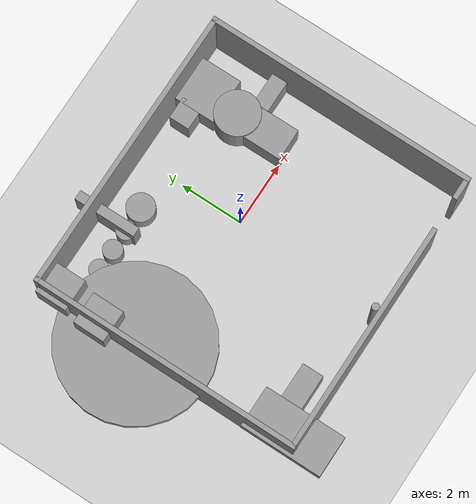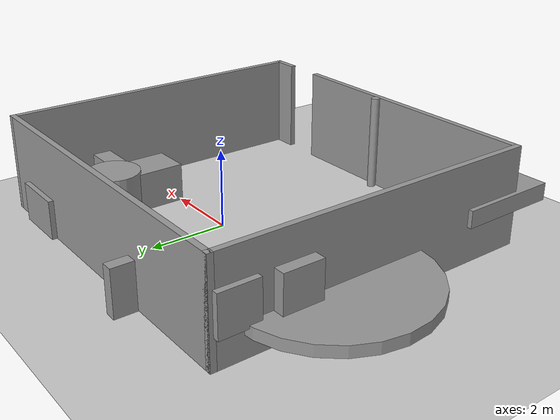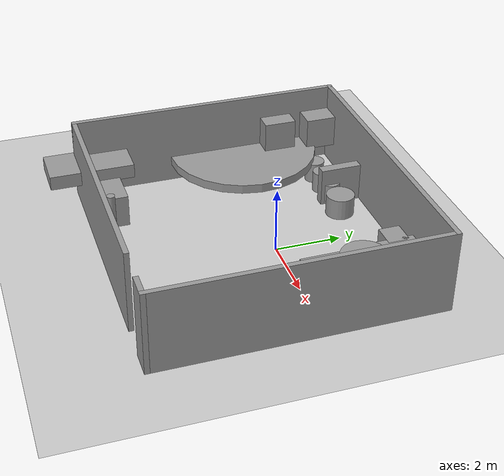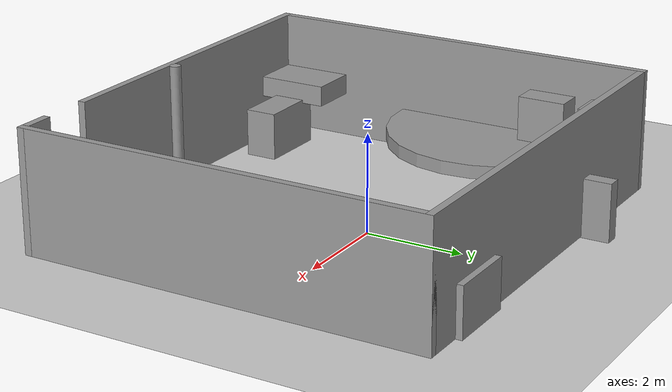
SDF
<sdf version="1.6">
 <world name="default">
  <light name="sun" type="directional">
   <pose>0 0 10 0 -0 0</pose>
   <diffuse>0.8 0.8 0.8 1</diffuse>
   <specular>0.2 0.2 0.2 1</specular>
   <attenuation>
    <range>1000</range>
    <constant>0.9</constant>
    <linear>0.01</linear>
    <quadratic>0.001</quadratic>
   </attenuation>
   <direction>-0.5 0.1 -0.9</direction>
  </light>
  <model name="ground_plane">
   <static>1</static>
   <link name="link">
    <collision name="collision">
     <geometry><plane><normal>0 0 1</normal><size>100 100</size></plane></geometry>
     <surface>
      <contact><collide_bitmask>65535</collide_bitmask></contact>
      <friction><ode><mu>100</mu><mu2>50</mu2></ode></friction>
     </surface>
    </collision>
    <visual name="visual">
     <cast_shadows>0</cast_shadows>
     <geometry><plane><normal>0 0 1</normal><size>100 100</size></plane></geometry>
     <material>
      <script><uri>file://media/materials/scripts/gazebo.material</uri><name>Gazebo/Grey</name></script>
     </material>
    </visual>
   </link>
  </model>
  <gravity>0 0 -9.8</gravity>
  <magnetic_field>6e-06 2.3e-05 -4.2e-05</magnetic_field>
  <atmosphere type="adiabatic"/>
  <physics name="default_physics" default="0" type="ode">
   <max_step_size>0.001</max_step_size>
   <real_time_factor>1</real_time_factor>
   <real_time_update_rate>1000</real_time_update_rate>
  </physics>
  <scene><ambient>0.4 0.4 0.4 1</ambient><background>0.7 0.7 0.7 1</background><shadows>1</shadows></scene>
  <audio><device>default</device></audio>
  <spherical_coordinates>
   <surface_model>EARTH_WGS84</surface_model>
   <latitude_deg>0</latitude_deg>
   <longitude_deg>0</longitude_deg>
   <elevation>0</elevation>
   <heading_deg>0</heading_deg>
  </spherical_coordinates>
  <model name="try2">
   <pose>-0.39709 -0.678514 0 0 -0 0</pose>
   <link name="Wall_13">
    <collision name="Wall_13_Collision">
     <geometry><box><size>8.5 0.15 2.5</size></box></geometry>
     <pose>0 0 1.25 0 -0 0</pose>
    </collision>
    <visual name="Wall_13_Visual">
     <pose>0 0 1.25 0 -0 0</pose>
     <geometry><box><size>8.5 0.15 2.5</size></box></geometry>
     <material>
      <script><uri>file://media/materials/scripts/gazebo.material</uri><name>Gazebo/Grey</name></script>
      <ambient>1 1 1 1</ambient>
     </material>
     <meta><layer>0</layer></meta>
    </visual>
    <pose>-4.425 -0 0 0 -0 -1.5708</pose>
   </link>
   <link name="Wall_14">
    <collision name="Wall_14_Collision">
     <geometry><box><size>7.25 0.15 2.5</size></box></geometry>
     <pose>0 0 1.25 0 -0 0</pose>
    </collision>
    <visual name="Wall_14_Visual">
     <pose>0 0 1.25 0 -0 0</pose>
     <geometry><box><size>7.25 0.15 2.5</size></box></geometry>
     <material>
      <script><uri>file://media/materials/scripts/gazebo.material</uri><name>Gazebo/Grey</name></script>
      <ambient>1 1 1 1</ambient>
     </material>
     <meta><layer>0</layer></meta>
    </visual>
    <pose>-0.875 -4.175 0 0 -0 0</pose>
   </link>
   <link name="Wall_7">
    <collision name="Wall_7_Collision">
     <geometry><box><size>9 0.15 2.5</size></box></geometry>
     <pose>0 0 1.25 0 -0 0</pose>
    </collision>
    <visual name="Wall_7_Visual">
     <pose>0 0 1.25 0 -0 0</pose>
     <geometry><box><size>9 0.15 2.5</size></box></geometry>
     <material>
      <script><uri>file://media/materials/scripts/gazebo.material</uri><name>Gazebo/Grey</name></script>
      <ambient>1 1 1 1</ambient>
     </material>
     <meta><layer>0</layer></meta>
    </visual>
    <pose>0 4.175 0 0 -0 0</pose>
   </link>
   <link name="Wall_8">
    <collision name="Wall_8_Collision">
     <geometry><box><size>8.5 0.15 2.5</size></box></geometry>
     <pose>0 0 1.25 0 -0 0</pose>
    </collision>
    <visual name="Wall_8_Visual">
     <pose>0 0 1.25 0 -0 0</pose>
     <geometry><box><size>8.5 0.15 2.5</size></box></geometry>
     <material>
      <script><uri>file://media/materials/scripts/gazebo.material</uri><name>Gazebo/Grey</name></script>
      <ambient>1 1 1 1</ambient>
     </material>
     <meta><layer>0</layer></meta>
    </visual>
    <pose>4.425 -0 0 0 -0 -1.5708</pose>
   </link>
   <link name="Wall_9">
    <collision name="Wall_9_Collision">
     <geometry><box><size>0.75 0.15 2.5</size></box></geometry>
     <pose>0 0 1.25 0 -0 0</pose>
    </collision>
    <visual name="Wall_9_Visual">
     <pose>0 0 1.25 0 -0 0</pose>
     <geometry><box><size>0.75 0.15 2.5</size></box></geometry>
     <material>
      <script><uri>file://media/materials/scripts/gazebo.material</uri><name>Gazebo/Grey</name></script>
      <ambient>1 1 1 1</ambient>
     </material>
     <meta><layer>0</layer></meta>
    </visual>
    <pose>4.125 -4.175 0 0 -0 3.14159</pose>
   </link>
   <static>1</static>
  </model>
  <model name="unit_cylinder">
   <pose>-4.6318 0.476303 0.683215 -0 -0 -0.0503</pose>
   <link name="link">
    <inertial>
     <mass>1</mass>
     <inertia><ixx>0.145833</ixx><ixy>0</ixy><ixz>0</ixz><iyy>0.145833</iyy><iyz>0</iyz><izz>0.125</izz></inertia>
    </inertial>
    <collision name="collision">
     <geometry><cylinder><radius>2.35027</radius><length>0.27797</length></cylinder></geometry>
    </collision>
    <visual name="visual">
     <geometry><cylinder><radius>2.35027</radius><length>0.27797</length></cylinder></geometry>
     <material>
      <script><name>Gazebo/Grey</name><uri>file://media/materials/scripts/gazebo.material</uri></script>
     </material>
    </visual>
   </link>
  </model>
  <model name="unit_box">
   <pose>-4.36158 -4.58482 1.15231 -0 -0 -0</pose>
   <link name="link">
    <inertial>
     <mass>1</mass>
     <inertia>
      <ixx>0.166667</ixx>
      <ixy>0</ixy>
      <ixz>0</ixz>
      <iyy>0.166667</iyy>
      <iyz>0</iyz>
      <izz>0.166667</izz>
     </inertia>
    </inertial>
    <collision name="collision"><geometry><box><size>1.29725 2.58142 0.433907</size></box></geometry></collision>
    <visual name="visual">
     <geometry><box><size>1.29725 2.58142 0.433907</size></box></geometry>
     <material>
      <script><name>Gazebo/Grey</name><uri>file://media/materials/scripts/gazebo.material</uri></script>
     </material>
    </visual>
   </link>
  </model>
  <model name="unit_box_0">
   <pose>-3.29242 -4.09603 0.5 0 0 -6e-06</pose>
   <link name="link">
    <inertial>
     <mass>1</mass>
     <inertia>
      <ixx>0.166667</ixx>
      <ixy>0</ixy>
      <ixz>0</ixz>
      <iyy>0.166667</iyy>
      <iyz>0</iyz>
      <izz>0.166667</izz>
     </inertia>
    </inertial>
    <collision name="collision"><geometry><box><size>1.45012 0.668566 1</size></box></geometry></collision>
    <visual name="visual">
     <geometry><box><size>1.45012 0.668566 1</size></box></geometry>
     <material>
      <script><name>Gazebo/Grey</name><uri>file://media/materials/scripts/gazebo.material</uri></script>
     </material>
    </visual>
   </link>
  </model>
  <model name="unit_box_1">
   <pose>2.54615 2.92035 0.5 0 -0 0.000397</pose>
   <link name="link">
    <inertial>
     <mass>1</mass>
     <inertia>
      <ixx>0.166667</ixx>
      <ixy>0</ixy>
      <ixz>0</ixz>
      <iyy>0.166667</iyy>
      <iyz>0</iyz>
      <izz>0.166667</izz>
     </inertia>
    </inertial>
    <collision name="collision"><geometry><box><size>1.43078 1.56512 1</size></box></geometry></collision>
    <visual name="visual">
     <geometry><box><size>1.43078 1.56512 1</size></box></geometry>
     <material>
      <script><name>Gazebo/Grey</name><uri>file://media/materials/scripts/gazebo.material</uri></script>
     </material>
    </visual>
   </link>
  </model>
  <model name="unit_box_3">
   <pose>3.4517 1.25348 0.499995 0 -9e-06 0.001146</pose>
   <link name="link">
    <inertial>
     <mass>1</mass>
     <inertia>
      <ixx>0.166667</ixx>
      <ixy>0</ixy>
      <ixz>0</ixz>
      <iyy>0.166667</iyy>
      <iyz>0</iyz>
      <izz>0.166667</izz>
     </inertia>
    </inertial>
    <collision name="collision"><geometry><box><size>1 0.490756 1</size></box></geometry></collision>
    <visual name="visual">
     <geometry><box><size>1 0.490756 1</size></box></geometry>
     <material>
      <script><name>Gazebo/Grey</name><uri>file://media/materials/scripts/gazebo.material</uri></script>
     </material>
    </visual>
   </link>
  </model>
  <model name="unit_box_4">
   <pose>2.45082 0.619021 0.500001 -2e-06 0 0.005235</pose>
   <link name="link">
    <inertial>
     <mass>1</mass>
     <inertia>
      <ixx>0.166667</ixx>
      <ixy>0</ixy>
      <ixz>0</ixz>
      <iyy>0.166667</iyy>
      <iyz>0</iyz>
      <izz>0.166667</izz>
     </inertia>
    </inertial>
    <collision name="collision"><geometry><box><size>1 1.28884 1</size></box></geometry></collision>
    <visual name="visual">
     <geometry><box><size>1 1.28884 1</size></box></geometry>
     <material>
      <script><name>Gazebo/Grey</name><uri>file://media/materials/scripts/gazebo.material</uri></script>
     </material>
    </visual>
   </link>
  </model>
  <model name="unit_box_1_clone">
   <pose>1.62629 2.93056 0.5 0 -0 0.000397</pose>
   <link name="link">
    <inertial>
     <mass>1</mass>
     <inertia>
      <ixx>0.166667</ixx>
      <ixy>0</ixy>
      <ixz>0</ixz>
      <iyy>0.166667</iyy>
      <iyz>0</iyz>
      <izz>0.166667</izz>
     </inertia>
    </inertial>
    <collision name="collision"><geometry><box><size>0.698919 0.638929 1</size></box></geometry></collision>
    <visual name="visual">
     <geometry><box><size>0.698919 0.638929 1</size></box></geometry>
     <material>
      <script><name>Gazebo/Grey</name><uri>file://media/materials/scripts/gazebo.material</uri></script>
     </material>
    </visual>
   </link>
  </model>
  <model name="unit_box_5">
   <pose>-2.04101 3.14754 0.279828 -0 0.000267 0.001693</pose>
   <link name="link">
    <inertial>
     <mass>1</mass>
     <inertia>
      <ixx>0.166667</ixx>
      <ixy>0</ixy>
      <ixz>0</ixz>
      <iyy>0.166667</iyy>
      <iyz>0</iyz>
      <izz>0.166667</izz>
     </inertia>
    </inertial>
    <collision name="collision"><geometry><box><size>0.297998 1.98198 1.78395</size></box></geometry></collision>
    <visual name="visual">
     <geometry><box><size>0.297998 1.98198 1.78395</size></box></geometry>
     <material>
      <script><name>Gazebo/Grey</name><uri>file://media/materials/scripts/gazebo.material</uri></script>
     </material>
    </visual>
   </link>
  </model>
  <model name="unit_cylinder_0">
   <pose>2.41652 1.69135 0.325526 -2e-06 -2e-06 0</pose>
   <link name="link">
    <inertial>
     <mass>1</mass>
     <inertia><ixx>0.145833</ixx><ixy>0</ixy><ixz>0</ixz><iyy>0.145833</iyy><iyz>0</iyz><izz>0.125</izz></inertia>
    </inertial>
    <collision name="collision">
     <geometry><cylinder><radius>0.691904</radius><length>1.53594</length></cylinder></geometry>
    </collision>
    <visual name="visual">
     <geometry><cylinder><radius>0.691904</radius><length>1.53594</length></cylinder></geometry>
     <material>
      <script><name>Gazebo/Grey</name><uri>file://media/materials/scripts/gazebo.material</uri></script>
     </material>
    </visual>
   </link>
  </model>
  <model name="unit_cylinder_0_clone">
   <pose>-1.29136 2.53482 0.325524 0 -0 0</pose>
   <link name="link">
    <inertial>
     <mass>1</mass>
     <inertia><ixx>0.145833</ixx><ixy>0</ixy><ixz>0</ixz><iyy>0.145833</iyy><iyz>0</iyz><izz>0.125</izz></inertia>
    </inertial>
    <collision name="collision">
     <geometry><cylinder><radius>0.433624</radius><length>0.651067</length></cylinder></geometry>
    </collision>
    <visual name="visual">
     <geometry><cylinder><radius>0.433624</radius><length>0.651067</length></cylinder></geometry>
     <material>
      <script><name>Gazebo/Grey</name><uri>file://media/materials/scripts/gazebo.material</uri></script>
     </material>
    </visual>
   </link>
  </model>
  <model name="unit_cylinder_0_clone_clone">
   <pose>-2.06578 2.51933 0.325533 0 -0 0</pose>
   <link name="link">
    <inertial>
     <mass>1</mass>
     <inertia><ixx>0.145833</ixx><ixy>0</ixy><ixz>0</ixz><iyy>0.145833</iyy><iyz>0</iyz><izz>0.125</izz></inertia>
    </inertial>
    <collision name="collision">
     <geometry><cylinder><radius>0.301077</radius><length>0.651067</length></cylinder></geometry>
    </collision>
    <visual name="visual">
     <geometry><cylinder><radius>0.301077</radius><length>0.651067</length></cylinder></geometry>
     <material>
      <script><name>Gazebo/Grey</name><uri>file://media/materials/scripts/gazebo.material</uri></script>
     </material>
    </visual>
   </link>
  </model>
  <model name="unit_cylinder_0_clone_clone_0">
   <pose>-2.73971 2.51856 0.325524 0 -0 0</pose>
   <link name="link">
    <inertial>
     <mass>1</mass>
     <inertia><ixx>0.145833</ixx><ixy>0</ixy><ixz>0</ixz><iyy>0.145833</iyy><iyz>0</iyz><izz>0.125</izz></inertia>
    </inertial>
    <collision name="collision">
     <geometry><cylinder><radius>0.301077</radius><length>0.651067</length></cylinder></geometry>
    </collision>
    <visual name="visual">
     <geometry><cylinder><radius>0.301077</radius><length>0.651067</length></cylinder></geometry>
     <material>
      <script><name>Gazebo/Grey</name><uri>file://media/materials/scripts/gazebo.material</uri></script>
     </material>
    </visual>
   </link>
  </model>
  <model name="unit_cylinder_0_clone_clone_1">
   <pose>-3.42024 2.52353 0.325527 0 -0 0.003021</pose>
   <link name="link">
    <inertial>
     <mass>1</mass>
     <inertia><ixx>0.145833</ixx><ixy>0</ixy><ixz>0</ixz><iyy>0.145833</iyy><iyz>0</iyz><izz>0.125</izz></inertia>
    </inertial>
    <collision name="collision">
     <geometry><cylinder><radius>0.301077</radius><length>0.651067</length></cylinder></geometry>
    </collision>
    <visual name="visual">
     <geometry><cylinder><radius>0.301077</radius><length>0.651067</length></cylinder></geometry>
     <material>
      <script><name>Gazebo/Grey</name><uri>file://media/materials/scripts/gazebo.material</uri></script>
     </material>
    </visual>
   </link>
  </model>
  <model name="unit_box_6">
   <pose>-4.68719 1.61482 1.24634 -1e-06 0 -0.004967</pose>
   <link name="link">
    <inertial>
     <mass>1</mass>
     <inertia>
      <ixx>0.166667</ixx>
      <ixy>0</ixy>
      <ixz>0</ixz>
      <iyy>0.166667</iyy>
      <iyz>0</iyz>
      <izz>0.166667</izz>
     </inertia>
    </inertial>
    <collision name="collision"><geometry><box><size>0.999992 1 0.999998</size></box></geometry></collision>
    <visual name="visual">
     <geometry><box><size>0.999992 1 0.999998</size></box></geometry>
     <material>
      <script><name>Gazebo/Grey</name><uri>file://media/materials/scripts/gazebo.material</uri></script>
     </material>
    </visual>
   </link>
  </model>
  <model name="unit_box_2">
   <pose>-4.543 2.97859 1.25065 -2e-06 -0 0.000537</pose>
   <link name="link">
    <inertial>
     <mass>1</mass>
     <inertia>
      <ixx>0.166667</ixx>
      <ixy>0</ixy>
      <ixz>0</ixz>
      <iyy>0.166667</iyy>
      <iyz>0</iyz>
      <izz>0.166667</izz>
     </inertia>
    </inertial>
    <collision name="collision"><geometry><box><size>0.999997 1 0.999996</size></box></geometry></collision>
    <visual name="visual">
     <geometry><box><size>0.999997 1 0.999996</size></box></geometry>
     <material>
      <script><name>Gazebo/Grey</name><uri>file://media/materials/scripts/gazebo.material</uri></script>
     </material>
    </visual>
   </link>
  </model>
  <model name="unit_cylinder_1">
   <pose>-0.384582 -4.66416 1.25779 0 0 -0.000526</pose>
   <link name="link">
    <inertial>
     <mass>1</mass>
     <inertia><ixx>0.145833</ixx><ixy>0</ixy><ixz>0</ixz><iyy>0.145833</iyy><iyz>0</iyz><izz>0.125</izz></inertia>
    </inertial>
    <collision name="collision">
     <geometry><cylinder><radius>0.114339</radius><length>2.51558</length></cylinder></geometry>
    </collision>
    <visual name="visual">
     <geometry><cylinder><radius>0.114339</radius><length>2.51558</length></cylinder></geometry>
     <material>
      <script><name>Gazebo/Grey</name><uri>file://media/materials/scripts/gazebo.material</uri></script>
     </material>
    </visual>
   </link>
  </model>
 </world>
</sdf>
